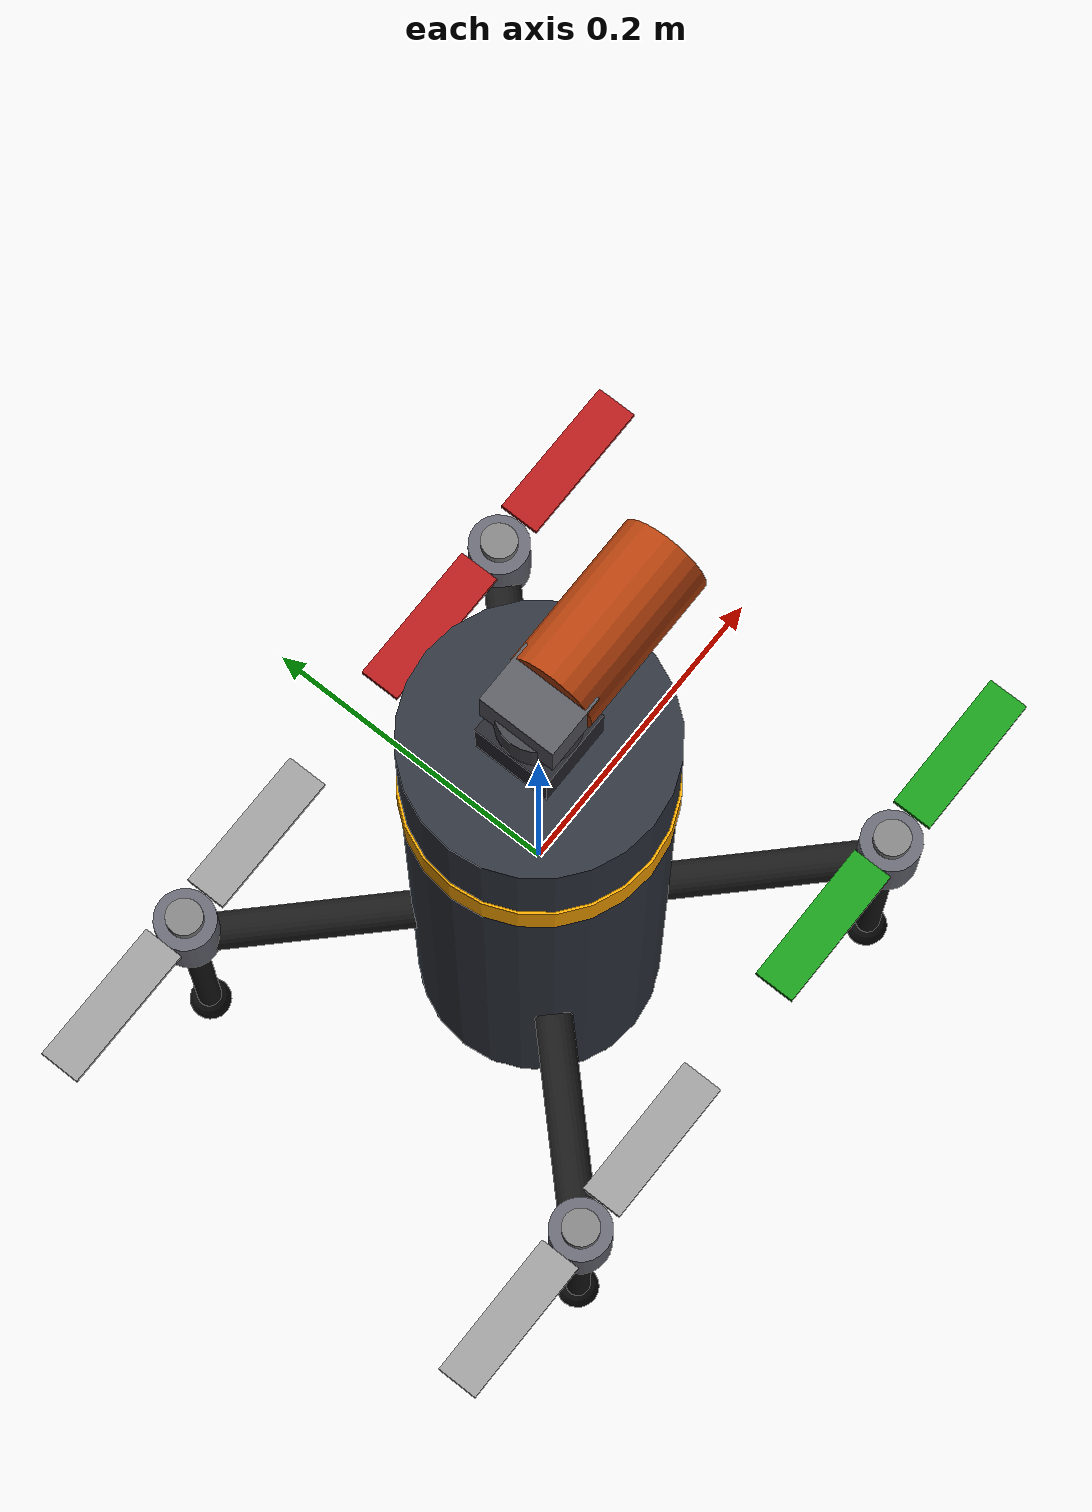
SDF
<?xml version="1.0" ?>
<sdf version="1.9">
  <model name="bullet_net_interceptor">

    <!-- =================================================================
         FUSELAGE + ARMS + LEGS  (single rigid body)
         ================================================================= -->
    <link name="base_link">
      <pose>0 0 0 0 0 0</pose>

      <inertial>
        <!-- 1.8 kg solid cylinder, r = 0.08, h = 0.50, centred on the origin.
             Ixx = Iyy = (1/12) m (3r^2 + h^2) = 0.040380
             Izz       = (1/2)  m r^2          = 0.005760           -->
        <mass>1.8</mass>
        <pose>0 0 0 0 0 0</pose>
        <inertia>
          <ixx>0.040380</ixx>
          <ixy>0</ixy>
          <ixz>0</ixz>
          <iyy>0.040380</iyy>
          <iyz>0</iyz>
          <izz>0.005760</izz>
        </inertia>
      </inertial>

      <!-- ========== fuselage ========== -->
      <collision name="fuselage_collision">
        <pose>0 0 0 0 0 0</pose>
        <geometry>
          <cylinder>
            <radius>0.08</radius>
            <length>0.50</length>
          </cylinder>
        </geometry>
        <surface>
          <friction>
            <ode>
              <mu>0.9</mu>
              <mu2>0.9</mu2>
            </ode>
          </friction>
          <contact>
            <ode>
              <kp>1e6</kp>
              <kd>100</kd>
              <max_vel>0.1</max_vel>
              <min_depth>0.001</min_depth>
            </ode>
          </contact>
        </surface>
      </collision>

      <visual name="fuselage_visual">
        <pose>0 0 0 0 0 0</pose>
        <geometry>
          <cylinder>
            <radius>0.08</radius>
            <length>0.50</length>
          </cylinder>
        </geometry>
        <material>
          <ambient>0.12 0.13 0.16 1</ambient>
          <diffuse>0.18 0.20 0.24 1</diffuse>
          <specular>0.55 0.55 0.60 1</specular>
        </material>
      </visual>

      <!-- ========== boat tail (rear taper) ========== -->
      <visual name="tail_cone_visual">
        <pose>0 0 -0.28 3.14159265 0 0</pose>
        <geometry>
          <cone>
            <radius>0.08</radius>
            <length>0.06</length>
          </cone>
        </geometry>
        <material>
          <ambient>0.10 0.10 0.12 1</ambient>
          <diffuse>0.15 0.15 0.18 1</diffuse>
        </material>
      </visual>

      <!-- ========== identification band ========== -->
      <visual name="band_visual">
        <pose>0 0 0.16 0 0 0</pose>
        <geometry>
          <cylinder>
            <radius>0.0815</radius>
            <length>0.03</length>
          </cylinder>
        </geometry>
        <material>
          <ambient>0.70 0.45 0.00 1</ambient>
          <diffuse>1.00 0.65 0.00 1</diffuse>
        </material>
      </visual>

      <!-- =========== ARM 0 : FRONT RIGHT (-45 deg) =========== -->
      <visual name="arm_0_visual">
        <pose>0.098995 -0.098995 -0.10 0 1.5707963 -0.7853982</pose>
        <geometry>
          <cylinder>
            <radius>0.012</radius>
            <length>0.16</length>
          </cylinder>
        </geometry>
        <material>
          <ambient>0.05 0.05 0.05 1</ambient>
          <diffuse>0.10 0.10 0.10 1</diffuse>
        </material>
      </visual>
      <collision name="arm_0_collision">
        <pose>0.098995 -0.098995 -0.10 0 1.5707963 -0.7853982</pose>
        <geometry>
          <cylinder>
            <radius>0.012</radius>
            <length>0.16</length>
          </cylinder>
        </geometry>
      </collision>
      <visual name="motor_pod_0_visual">
        <pose>0.155563 -0.155563 -0.085 0 0 0</pose>
        <geometry>
          <cylinder>
            <radius>0.020</radius>
            <length>0.045</length>
          </cylinder>
        </geometry>
        <material>
          <ambient>0.25 0.25 0.28 1</ambient>
          <diffuse>0.40 0.40 0.45 1</diffuse>
        </material>
      </visual>
      <visual name="leg_0_visual">
        <pose>0.155563 -0.155563 -0.19 0 0 0</pose>
        <geometry>
          <cylinder>
            <radius>0.008</radius>
            <length>0.18</length>
          </cylinder>
        </geometry>
        <material>
          <ambient>0.05 0.05 0.05 1</ambient>
          <diffuse>0.08 0.08 0.08 1</diffuse>
        </material>
      </visual>
      <collision name="foot_0_collision">
        <pose>0.155563 -0.155563 -0.28 0 0 0</pose>
        <geometry>
          <sphere>
            <radius>0.014</radius>
          </sphere>
        </geometry>
        <surface>
          <friction>
            <ode>
              <mu>1.2</mu>
              <mu2>1.2</mu2>
            </ode>
          </friction>
          <contact>
            <ode>
              <kp>1e6</kp>
              <kd>100</kd>
              <max_vel>0.1</max_vel>
              <min_depth>0.001</min_depth>
            </ode>
          </contact>
        </surface>
      </collision>
      <visual name="foot_0_visual">
        <pose>0.155563 -0.155563 -0.28 0 0 0</pose>
        <geometry>
          <sphere>
            <radius>0.014</radius>
          </sphere>
        </geometry>
        <material>
          <ambient>0.02 0.02 0.02 1</ambient>
          <diffuse>0.05 0.05 0.05 1</diffuse>
        </material>
      </visual>

      <!-- =========== ARM 1 : REAR LEFT (+135 deg) =========== -->
      <visual name="arm_1_visual">
        <pose>-0.098995 0.098995 -0.10 0 1.5707963 2.3561945</pose>
        <geometry>
          <cylinder>
            <radius>0.012</radius>
            <length>0.16</length>
          </cylinder>
        </geometry>
        <material>
          <ambient>0.05 0.05 0.05 1</ambient>
          <diffuse>0.10 0.10 0.10 1</diffuse>
        </material>
      </visual>
      <collision name="arm_1_collision">
        <pose>-0.098995 0.098995 -0.10 0 1.5707963 2.3561945</pose>
        <geometry>
          <cylinder>
            <radius>0.012</radius>
            <length>0.16</length>
          </cylinder>
        </geometry>
      </collision>
      <visual name="motor_pod_1_visual">
        <pose>-0.155563 0.155563 -0.085 0 0 0</pose>
        <geometry>
          <cylinder>
            <radius>0.020</radius>
            <length>0.045</length>
          </cylinder>
        </geometry>
        <material>
          <ambient>0.25 0.25 0.28 1</ambient>
          <diffuse>0.40 0.40 0.45 1</diffuse>
        </material>
      </visual>
      <visual name="leg_1_visual">
        <pose>-0.155563 0.155563 -0.19 0 0 0</pose>
        <geometry>
          <cylinder>
            <radius>0.008</radius>
            <length>0.18</length>
          </cylinder>
        </geometry>
        <material>
          <ambient>0.05 0.05 0.05 1</ambient>
          <diffuse>0.08 0.08 0.08 1</diffuse>
        </material>
      </visual>
      <collision name="foot_1_collision">
        <pose>-0.155563 0.155563 -0.28 0 0 0</pose>
        <geometry>
          <sphere>
            <radius>0.014</radius>
          </sphere>
        </geometry>
        <surface>
          <friction>
            <ode>
              <mu>1.2</mu>
              <mu2>1.2</mu2>
            </ode>
          </friction>
          <contact>
            <ode>
              <kp>1e6</kp>
              <kd>100</kd>
              <max_vel>0.1</max_vel>
              <min_depth>0.001</min_depth>
            </ode>
          </contact>
        </surface>
      </collision>
      <visual name="foot_1_visual">
        <pose>-0.155563 0.155563 -0.28 0 0 0</pose>
        <geometry>
          <sphere>
            <radius>0.014</radius>
          </sphere>
        </geometry>
        <material>
          <ambient>0.02 0.02 0.02 1</ambient>
          <diffuse>0.05 0.05 0.05 1</diffuse>
        </material>
      </visual>

      <!-- =========== ARM 2 : FRONT LEFT (+45 deg) =========== -->
      <visual name="arm_2_visual">
        <pose>0.098995 0.098995 -0.10 0 1.5707963 0.7853982</pose>
        <geometry>
          <cylinder>
            <radius>0.012</radius>
            <length>0.16</length>
          </cylinder>
        </geometry>
        <material>
          <ambient>0.05 0.05 0.05 1</ambient>
          <diffuse>0.10 0.10 0.10 1</diffuse>
        </material>
      </visual>
      <collision name="arm_2_collision">
        <pose>0.098995 0.098995 -0.10 0 1.5707963 0.7853982</pose>
        <geometry>
          <cylinder>
            <radius>0.012</radius>
            <length>0.16</length>
          </cylinder>
        </geometry>
      </collision>
      <visual name="motor_pod_2_visual">
        <pose>0.155563 0.155563 -0.085 0 0 0</pose>
        <geometry>
          <cylinder>
            <radius>0.020</radius>
            <length>0.045</length>
          </cylinder>
        </geometry>
        <material>
          <ambient>0.25 0.25 0.28 1</ambient>
          <diffuse>0.40 0.40 0.45 1</diffuse>
        </material>
      </visual>
      <visual name="leg_2_visual">
        <pose>0.155563 0.155563 -0.19 0 0 0</pose>
        <geometry>
          <cylinder>
            <radius>0.008</radius>
            <length>0.18</length>
          </cylinder>
        </geometry>
        <material>
          <ambient>0.05 0.05 0.05 1</ambient>
          <diffuse>0.08 0.08 0.08 1</diffuse>
        </material>
      </visual>
      <collision name="foot_2_collision">
        <pose>0.155563 0.155563 -0.28 0 0 0</pose>
        <geometry>
          <sphere>
            <radius>0.014</radius>
          </sphere>
        </geometry>
        <surface>
          <friction>
            <ode>
              <mu>1.2</mu>
              <mu2>1.2</mu2>
            </ode>
          </friction>
          <contact>
            <ode>
              <kp>1e6</kp>
              <kd>100</kd>
              <max_vel>0.1</max_vel>
              <min_depth>0.001</min_depth>
            </ode>
          </contact>
        </surface>
      </collision>
      <visual name="foot_2_visual">
        <pose>0.155563 0.155563 -0.28 0 0 0</pose>
        <geometry>
          <sphere>
            <radius>0.014</radius>
          </sphere>
        </geometry>
        <material>
          <ambient>0.02 0.02 0.02 1</ambient>
          <diffuse>0.05 0.05 0.05 1</diffuse>
        </material>
      </visual>

      <!-- =========== ARM 3 : REAR RIGHT (-135 deg) =========== -->
      <visual name="arm_3_visual">
        <pose>-0.098995 -0.098995 -0.10 0 1.5707963 -2.3561945</pose>
        <geometry>
          <cylinder>
            <radius>0.012</radius>
            <length>0.16</length>
          </cylinder>
        </geometry>
        <material>
          <ambient>0.05 0.05 0.05 1</ambient>
          <diffuse>0.10 0.10 0.10 1</diffuse>
        </material>
      </visual>
      <collision name="arm_3_collision">
        <pose>-0.098995 -0.098995 -0.10 0 1.5707963 -2.3561945</pose>
        <geometry>
          <cylinder>
            <radius>0.012</radius>
            <length>0.16</length>
          </cylinder>
        </geometry>
      </collision>
      <visual name="motor_pod_3_visual">
        <pose>-0.155563 -0.155563 -0.085 0 0 0</pose>
        <geometry>
          <cylinder>
            <radius>0.020</radius>
            <length>0.045</length>
          </cylinder>
        </geometry>
        <material>
          <ambient>0.25 0.25 0.28 1</ambient>
          <diffuse>0.40 0.40 0.45 1</diffuse>
        </material>
      </visual>
      <visual name="leg_3_visual">
        <pose>-0.155563 -0.155563 -0.19 0 0 0</pose>
        <geometry>
          <cylinder>
            <radius>0.008</radius>
            <length>0.18</length>
          </cylinder>
        </geometry>
        <material>
          <ambient>0.05 0.05 0.05 1</ambient>
          <diffuse>0.08 0.08 0.08 1</diffuse>
        </material>
      </visual>
      <collision name="foot_3_collision">
        <pose>-0.155563 -0.155563 -0.28 0 0 0</pose>
        <geometry>
          <sphere>
            <radius>0.014</radius>
          </sphere>
        </geometry>
        <surface>
          <friction>
            <ode>
              <mu>1.2</mu>
              <mu2>1.2</mu2>
            </ode>
          </friction>
          <contact>
            <ode>
              <kp>1e6</kp>
              <kd>100</kd>
              <max_vel>0.1</max_vel>
              <min_depth>0.001</min_depth>
            </ode>
          </contact>
        </surface>
      </collision>
      <visual name="foot_3_visual">
        <pose>-0.155563 -0.155563 -0.28 0 0 0</pose>
        <geometry>
          <sphere>
            <radius>0.014</radius>
          </sphere>
        </geometry>
        <material>
          <ambient>0.02 0.02 0.02 1</ambient>
          <diffuse>0.05 0.05 0.05 1</diffuse>
        </material>
      </visual>
    </link>

    <!-- =================================================================
         IMU
         ================================================================= -->
    <link name="imu_link">
      <pose>0 0 0 0 0 0</pose>
      <inertial>
        <mass>0.010</mass>
        <inertia>
          <ixx>1.0e-06</ixx>
          <ixy>0</ixy>
          <ixz>0</ixz>
          <iyy>1.0e-06</iyy>
          <iyz>0</iyz>
          <izz>1.0e-06</izz>
        </inertia>
      </inertial>

      <sensor name="imu_sensor" type="imu">
        <gz_frame_id>imu_link</gz_frame_id>
        <pose>0 0 0 3.14159265 0 0</pose>
        <always_on>1</always_on>
        <update_rate>1000</update_rate>
        <imu>
          <angular_velocity>
            <x>
              <noise type="gaussian">
                <mean>0</mean>
                <stddev>0.0003394</stddev>
                <bias_mean>0.0000075</bias_mean>
                <bias_stddev>0.0000008</bias_stddev>
              </noise>
            </x>
            <y>
              <noise type="gaussian">
                <mean>0</mean>
                <stddev>0.0003394</stddev>
                <bias_mean>0.0000075</bias_mean>
                <bias_stddev>0.0000008</bias_stddev>
              </noise>
            </y>
            <z>
              <noise type="gaussian">
                <mean>0</mean>
                <stddev>0.0003394</stddev>
                <bias_mean>0.0000075</bias_mean>
                <bias_stddev>0.0000008</bias_stddev>
              </noise>
            </z>
          </angular_velocity>
          <linear_acceleration>
            <x>
              <noise type="gaussian">
                <mean>0</mean>
                <stddev>0.004</stddev>
                <bias_mean>0.1</bias_mean>
                <bias_stddev>0.001</bias_stddev>
              </noise>
            </x>
            <y>
              <noise type="gaussian">
                <mean>0</mean>
                <stddev>0.004</stddev>
                <bias_mean>0.1</bias_mean>
                <bias_stddev>0.001</bias_stddev>
              </noise>
            </y>
            <z>
              <noise type="gaussian">
                <mean>0</mean>
                <stddev>0.004</stddev>
                <bias_mean>0.1</bias_mean>
                <bias_stddev>0.001</bias_stddev>
              </noise>
            </z>
          </linear_acceleration>
        </imu>
      </sensor>
    </link>

    <joint name="imu_joint" type="fixed">
      <parent>base_link</parent>
      <child>imu_link</child>
    </joint>

    <link name="camera_link">
      <pose>0.055 0 0.24 0 0.2617994 0</pose>
      <inertial>
        <mass>0.030</mass>
        <inertia>
          <ixx>1.0e-05</ixx>
          <ixy>0</ixy>
          <ixz>0</ixz>
          <iyy>1.0e-05</iyy>
          <iyz>0</iyz>
          <izz>1.0e-05</izz>
        </inertia>
      </inertial>

      <visual name="camera_housing_visual">
        <pose>0 0 0 0 1.5707963 0</pose>
        <geometry>
          <cylinder>
            <radius>0.018</radius>
            <length>0.045</length>
          </cylinder>
        </geometry>
        <material>
          <ambient>0.02 0.02 0.02 1</ambient>
          <diffuse>0.05 0.05 0.05 1</diffuse>
          <specular>0.2 0.2 0.2 1</specular>
        </material>
      </visual>
      <visual name="camera_lens_visual">
        <pose>0.024 0 0 0 1.5707963 0</pose>
        <geometry>
          <cylinder>
            <radius>0.013</radius>
            <length>0.006</length>
          </cylinder>
        </geometry>
        <material>
          <ambient>0.00 0.10 0.20 1</ambient>
          <diffuse>0.05 0.30 0.55 1</diffuse>
          <specular>0.9 0.9 0.9 1</specular>
        </material>
      </visual>

      <sensor name="target_lock_camera" type="camera">
        <pose>0 0 0 0 0 0</pose>
        <always_on>1</always_on>
        <update_rate>60</update_rate>
        <visualize>1</visualize>
        <topic>bullet_net_interceptor/nose_camera/image</topic>
        <camera name="nose_cam">
          <horizontal_fov>1.221730</horizontal_fov>
          <image>
            <width>1280</width>
            <height>720</height>
            <format>R8G8B8</format>
          </image>
          <clip>
            <near>0.05</near>
            <far>3000</far>
          </clip>
          <noise>
            <type>gaussian</type>
            <mean>0.0</mean>
            <stddev>0.005</stddev>
          </noise>
          <lens>
            <intrinsics>
              <fx>929.0</fx>
              <fy>929.0</fy>
              <cx>640.0</cx>
              <cy>360.0</cy>
              <s>0.0</s>
            </intrinsics>
          </lens>
          <optical_frame_id>camera_optical_frame</optical_frame_id>
        </camera>
      </sensor>
    </link>

    <joint name="camera_joint" type="fixed">
      <parent>base_link</parent>
      <child>camera_link</child>
    </joint>

    <link name="rotor_0">
      <pose>0.155563 -0.155563 -0.06 0 0 0</pose>
      <inertial>
        <mass>0.025</mass>
        <inertia>
          <ixx>6.0e-05</ixx>
          <ixy>0</ixy>
          <ixz>0</ixz>
          <iyy>6.0e-05</iyy>
          <iyz>0</iyz>
          <izz>1.2e-04</izz>
        </inertia>
      </inertial>
      <visual name="rotor_0_hub">
        <geometry>
          <cylinder>
            <radius>0.012</radius>
            <length>0.010</length>
          </cylinder>
        </geometry>
        <material>
          <ambient>0.30 0.30 0.30 1</ambient>
          <diffuse>0.50 0.50 0.50 1</diffuse>
        </material>
      </visual>
      <visual name="rotor_0_blade_1">
        <pose>0.070 0 0 0 0 0</pose>
        <geometry>
          <box>
            <size>0.10 0.028 0.004</size>
          </box>
        </geometry>
        <material>
          <ambient>0.05 0.30 0.05 1</ambient>
          <diffuse>0.10 0.60 0.10 1</diffuse>
        </material>
      </visual>
      <visual name="rotor_0_blade_2">
        <pose>-0.070 0 0 0 0 0</pose>
        <geometry>
          <box>
            <size>0.10 0.028 0.004</size>
          </box>
        </geometry>
        <material>
          <ambient>0.05 0.30 0.05 1</ambient>
          <diffuse>0.10 0.60 0.10 1</diffuse>
        </material>
      </visual>
      <collision name="rotor_0_collision">
        <geometry>
          <cylinder>
            <radius>0.120</radius>
            <length>0.005</length>
          </cylinder>
        </geometry>
        <surface>
          <contact>
            <ode/>
          </contact>
          <friction>
            <ode/>
          </friction>
        </surface>
      </collision>
    </link>

    <joint name="rotor_0_joint" type="revolute">
      <parent>base_link</parent>
      <child>rotor_0</child>
      <axis>
        <xyz>0 0 1</xyz>
        <limit>
          <lower>-1e16</lower>
          <upper>1e16</upper>
        </limit>
        <dynamics>
          <damping>0.004</damping>
        </dynamics>
      </axis>
    </joint>

    <link name="rotor_1">
      <pose>-0.155563 0.155563 -0.06 0 0 0</pose>
      <inertial>
        <mass>0.025</mass>
        <inertia>
          <ixx>6.0e-05</ixx>
          <ixy>0</ixy>
          <ixz>0</ixz>
          <iyy>6.0e-05</iyy>
          <iyz>0</iyz>
          <izz>1.2e-04</izz>
        </inertia>
      </inertial>
      <visual name="rotor_1_hub">
        <geometry>
          <cylinder>
            <radius>0.012</radius>
            <length>0.010</length>
          </cylinder>
        </geometry>
        <material>
          <ambient>0.30 0.30 0.30 1</ambient>
          <diffuse>0.50 0.50 0.50 1</diffuse>
        </material>
      </visual>
      <visual name="rotor_1_blade_1">
        <pose>0.070 0 0 0 0 0</pose>
        <geometry>
          <box>
            <size>0.10 0.028 0.004</size>
          </box>
        </geometry>
        <material>
          <ambient>0.30 0.30 0.30 1</ambient>
          <diffuse>0.60 0.60 0.60 1</diffuse>
        </material>
      </visual>
      <visual name="rotor_1_blade_2">
        <pose>-0.070 0 0 0 0 0</pose>
        <geometry>
          <box>
            <size>0.10 0.028 0.004</size>
          </box>
        </geometry>
        <material>
          <ambient>0.30 0.30 0.30 1</ambient>
          <diffuse>0.60 0.60 0.60 1</diffuse>
        </material>
      </visual>
      <collision name="rotor_1_collision">
        <geometry>
          <cylinder>
            <radius>0.120</radius>
            <length>0.005</length>
          </cylinder>
        </geometry>
        <surface>
          <contact>
            <ode/>
          </contact>
          <friction>
            <ode/>
          </friction>
        </surface>
      </collision>
    </link>

    <joint name="rotor_1_joint" type="revolute">
      <parent>base_link</parent>
      <child>rotor_1</child>
      <axis>
        <xyz>0 0 1</xyz>
        <limit>
          <lower>-1e16</lower>
          <upper>1e16</upper>
        </limit>
        <dynamics>
          <damping>0.004</damping>
        </dynamics>
      </axis>
    </joint>

    <link name="rotor_2">
      <pose>0.155563 0.155563 -0.06 0 0 0</pose>
      <inertial>
        <mass>0.025</mass>
        <inertia>
          <ixx>6.0e-05</ixx>
          <ixy>0</ixy>
          <ixz>0</ixz>
          <iyy>6.0e-05</iyy>
          <iyz>0</iyz>
          <izz>1.2e-04</izz>
        </inertia>
      </inertial>
      <visual name="rotor_2_hub">
        <geometry>
          <cylinder>
            <radius>0.012</radius>
            <length>0.010</length>
          </cylinder>
        </geometry>
        <material>
          <ambient>0.30 0.30 0.30 1</ambient>
          <diffuse>0.50 0.50 0.50 1</diffuse>
        </material>
      </visual>
      <visual name="rotor_2_blade_1">
        <pose>0.070 0 0 0 0 0</pose>
        <geometry>
          <box>
            <size>0.10 0.028 0.004</size>
          </box>
        </geometry>
        <material>
          <ambient>0.30 0.05 0.05 1</ambient>
          <diffuse>0.70 0.10 0.10 1</diffuse>
        </material>
      </visual>
      <visual name="rotor_2_blade_2">
        <pose>-0.070 0 0 0 0 0</pose>
        <geometry>
          <box>
            <size>0.10 0.028 0.004</size>
          </box>
        </geometry>
        <material>
          <ambient>0.30 0.05 0.05 1</ambient>
          <diffuse>0.70 0.10 0.10 1</diffuse>
        </material>
      </visual>
      <collision name="rotor_2_collision">
        <geometry>
          <cylinder>
            <radius>0.120</radius>
            <length>0.005</length>
          </cylinder>
        </geometry>
        <surface>
          <contact>
            <ode/>
          </contact>
          <friction>
            <ode/>
          </friction>
        </surface>
      </collision>
    </link>

    <joint name="rotor_2_joint" type="revolute">
      <parent>base_link</parent>
      <child>rotor_2</child>
      <axis>
        <xyz>0 0 1</xyz>
        <limit>
          <lower>-1e16</lower>
          <upper>1e16</upper>
        </limit>
        <dynamics>
          <damping>0.004</damping>
        </dynamics>
      </axis>
    </joint>

    <link name="rotor_3">
      <pose>-0.155563 -0.155563 -0.06 0 0 0</pose>
      <inertial>
        <mass>0.025</mass>
        <inertia>
          <ixx>6.0e-05</ixx>
          <ixy>0</ixy>
          <ixz>0</ixz>
          <iyy>6.0e-05</iyy>
          <iyz>0</iyz>
          <izz>1.2e-04</izz>
        </inertia>
      </inertial>
      <visual name="rotor_3_hub">
        <geometry>
          <cylinder>
            <radius>0.012</radius>
            <length>0.010</length>
          </cylinder>
        </geometry>
        <material>
          <ambient>0.30 0.30 0.30 1</ambient>
          <diffuse>0.50 0.50 0.50 1</diffuse>
        </material>
      </visual>
      <visual name="rotor_3_blade_1">
        <pose>0.070 0 0 0 0 0</pose>
        <geometry>
          <box>
            <size>0.10 0.028 0.004</size>
          </box>
        </geometry>
        <material>
          <ambient>0.30 0.30 0.30 1</ambient>
          <diffuse>0.60 0.60 0.60 1</diffuse>
        </material>
      </visual>
      <visual name="rotor_3_blade_2">
        <pose>-0.070 0 0 0 0 0</pose>
        <geometry>
          <box>
            <size>0.10 0.028 0.004</size>
          </box>
        </geometry>
        <material>
          <ambient>0.30 0.30 0.30 1</ambient>
          <diffuse>0.60 0.60 0.60 1</diffuse>
        </material>
      </visual>
      <collision name="rotor_3_collision">
        <geometry>
          <cylinder>
            <radius>0.120</radius>
            <length>0.005</length>
          </cylinder>
        </geometry>
        <surface>
          <contact>
            <ode/>
          </contact>
          <friction>
            <ode/>
          </friction>
        </surface>
      </collision>
    </link>

    <joint name="rotor_3_joint" type="revolute">
      <parent>base_link</parent>
      <child>rotor_3</child>
      <axis>
        <xyz>0 0 1</xyz>
        <limit>
          <lower>-1e16</lower>
          <upper>1e16</upper>
        </limit>
        <dynamics>
          <damping>0.004</damping>
        </dynamics>
      </axis>
    </joint>

    <!-- =================================================================
         PLUGINS
         ================================================================= -->

    <plugin filename="gz-sim-joint-state-publisher-system"
            name="gz::sim::systems::JointStatePublisher">
    </plugin>

    <!-- rotor_0 : CCW -->
    <plugin filename="gz-sim-lift-drag-system"
            name="gz::sim::systems::LiftDrag">
      <a0>0.20</a0>
      <alpha_stall>1.4</alpha_stall>
      <cla>4.2500</cla>
      <cda>0.10</cda>
      <cma>0.0</cma>
      <cla_stall>-0.025</cla_stall>
      <cda_stall>0.0</cda_stall>
      <cma_stall>0.0</cma_stall>
      <area>0.0025</area>
      <air_density>1.2041</air_density>
      <cp>0.084 0 0</cp>
      <forward>0 1 0</forward>
      <upward>0 0 1</upward>
      <link_name>rotor_0</link_name>
    </plugin>
    <plugin filename="gz-sim-lift-drag-system"
            name="gz::sim::systems::LiftDrag">
      <a0>0.20</a0>
      <alpha_stall>1.4</alpha_stall>
      <cla>4.2500</cla>
      <cda>0.10</cda>
      <cma>0.0</cma>
      <cla_stall>-0.025</cla_stall>
      <cda_stall>0.0</cda_stall>
      <cma_stall>0.0</cma_stall>
      <area>0.0025</area>
      <air_density>1.2041</air_density>
      <cp>-0.084 0 0</cp>
      <forward>0 -1 0</forward>
      <upward>0 0 1</upward>
      <link_name>rotor_0</link_name>
    </plugin>

    <!-- rotor_1 : CCW -->
    <plugin filename="gz-sim-lift-drag-system"
            name="gz::sim::systems::LiftDrag">
      <a0>0.20</a0>
      <alpha_stall>1.4</alpha_stall>
      <cla>4.2500</cla>
      <cda>0.10</cda>
      <cma>0.0</cma>
      <cla_stall>-0.025</cla_stall>
      <cda_stall>0.0</cda_stall>
      <cma_stall>0.0</cma_stall>
      <area>0.0025</area>
      <air_density>1.2041</air_density>
      <cp>0.084 0 0</cp>
      <forward>0 1 0</forward>
      <upward>0 0 1</upward>
      <link_name>rotor_1</link_name>
    </plugin>
    <plugin filename="gz-sim-lift-drag-system"
            name="gz::sim::systems::LiftDrag">
      <a0>0.20</a0>
      <alpha_stall>1.4</alpha_stall>
      <cla>4.2500</cla>
      <cda>0.10</cda>
      <cma>0.0</cma>
      <cla_stall>-0.025</cla_stall>
      <cda_stall>0.0</cda_stall>
      <cma_stall>0.0</cma_stall>
      <area>0.0025</area>
      <air_density>1.2041</air_density>
      <cp>-0.084 0 0</cp>
      <forward>0 -1 0</forward>
      <upward>0 0 1</upward>
      <link_name>rotor_1</link_name>
    </plugin>

    <!-- rotor_2 : CW (mirrored forward) -->
    <plugin filename="gz-sim-lift-drag-system"
            name="gz::sim::systems::LiftDrag">
      <a0>0.20</a0>
      <alpha_stall>1.4</alpha_stall>
      <cla>4.2500</cla>
      <cda>0.10</cda>
      <cma>0.0</cma>
      <cla_stall>-0.025</cla_stall>
      <cda_stall>0.0</cda_stall>
      <cma_stall>0.0</cma_stall>
      <area>0.0025</area>
      <air_density>1.2041</air_density>
      <cp>0.084 0 0</cp>
      <forward>0 -1 0</forward>
      <upward>0 0 1</upward>
      <link_name>rotor_2</link_name>
    </plugin>
    <plugin filename="gz-sim-lift-drag-system"
            name="gz::sim::systems::LiftDrag">
      <a0>0.20</a0>
      <alpha_stall>1.4</alpha_stall>
      <cla>4.2500</cla>
      <cda>0.10</cda>
      <cma>0.0</cma>
      <cla_stall>-0.025</cla_stall>
      <cda_stall>0.0</cda_stall>
      <cma_stall>0.0</cma_stall>
      <area>0.0025</area>
      <air_density>1.2041</air_density>
      <cp>-0.084 0 0</cp>
      <forward>0 1 0</forward>
      <upward>0 0 1</upward>
      <link_name>rotor_2</link_name>
    </plugin>

    <!-- rotor_3 : CW (mirrored forward) -->
    <plugin filename="gz-sim-lift-drag-system"
            name="gz::sim::systems::LiftDrag">
      <a0>0.20</a0>
      <alpha_stall>1.4</alpha_stall>
      <cla>4.2500</cla>
      <cda>0.10</cda>
      <cma>0.0</cma>
      <cla_stall>-0.025</cla_stall>
      <cda_stall>0.0</cda_stall>
      <cma_stall>0.0</cma_stall>
      <area>0.0025</area>
      <air_density>1.2041</air_density>
      <cp>0.084 0 0</cp>
      <forward>0 -1 0</forward>
      <upward>0 0 1</upward>
      <link_name>rotor_3</link_name>
    </plugin>
    <plugin filename="gz-sim-lift-drag-system"
            name="gz::sim::systems::LiftDrag">
      <a0>0.20</a0>
      <alpha_stall>1.4</alpha_stall>
      <cla>4.2500</cla>
      <cda>0.10</cda>
      <cma>0.0</cma>
      <cla_stall>-0.025</cla_stall>
      <cda_stall>0.0</cda_stall>
      <cma_stall>0.0</cma_stall>
      <area>0.0025</area>
      <air_density>1.2041</air_density>
      <cp>-0.084 0 0</cp>
      <forward>0 1 0</forward>
      <upward>0 0 1</upward>
      <link_name>rotor_3</link_name>
    </plugin>

    <!-- Required so the ArduPilot plugin can drive the rotor joints -->
    <plugin filename="gz-sim-apply-joint-force-system"
            name="gz::sim::systems::ApplyJointForce">
      <joint_name>rotor_0_joint</joint_name>
    </plugin>
    <plugin filename="gz-sim-apply-joint-force-system"
            name="gz::sim::systems::ApplyJointForce">
      <joint_name>rotor_1_joint</joint_name>
    </plugin>
    <plugin filename="gz-sim-apply-joint-force-system"
            name="gz::sim::systems::ApplyJointForce">
      <joint_name>rotor_2_joint</joint_name>
    </plugin>
    <plugin filename="gz-sim-apply-joint-force-system"
            name="gz::sim::systems::ApplyJointForce">
      <joint_name>rotor_3_joint</joint_name>
    </plugin>

    <plugin name="ArduPilotPlugin" filename="ArduPilotPlugin">
      <!-- Port settings -->
      <fdm_addr>127.0.0.1</fdm_addr>
      <fdm_port_in>9032</fdm_port_in>
      <fdm_port_out>9033</fdm_port_out>
      <connectionTimeoutMaxCount>5</connectionTimeoutMaxCount>
      <lock_step>1</lock_step>
      <no_time_sync>1</no_time_sync>
      <have_32_channels>0</have_32_channels>

      <!-- Frame conventions: Gazebo ENU/FLU -> ArduPilot NED/FRD -->
      <modelXYZToAirplaneXForwardZDown degrees="true">0 0 0 180 0 0</modelXYZToAirplaneXForwardZDown>
      <gazeboXYZToNED degrees="true">0 0 0 180 0 90</gazeboXYZToNED>

      <!-- Sensors -->
      <!-- Scoped name is resolved relative to this model entity, so the
           model name itself must NOT be repeated here. -->
      <imuName>imu_link::imu_sensor</imuName>

      <!-- Motor 1 : front right, CCW -->
      <control channel="0">
        <jointName>rotor_0_joint</jointName>
        <useForce>1</useForce>
        <multiplier>1550</multiplier>
        <offset>0</offset>
        <servo_min>1100</servo_min>
        <servo_max>1900</servo_max>
        <type>VELOCITY</type>
        <p_gain>0.20</p_gain>
        <i_gain>0</i_gain>
        <d_gain>0</d_gain>
        <i_max>0</i_max>
        <i_min>0</i_min>
        <cmd_max>6.0</cmd_max>
        <cmd_min>-6.0</cmd_min>
        <controlVelocitySlowdownSim>1</controlVelocitySlowdownSim>
      </control>

      <!-- Motor 2 : rear left, CCW -->
      <control channel="1">
        <jointName>rotor_1_joint</jointName>
        <useForce>1</useForce>
        <multiplier>1550</multiplier>
        <offset>0</offset>
        <servo_min>1100</servo_min>
        <servo_max>1900</servo_max>
        <type>VELOCITY</type>
        <p_gain>0.20</p_gain>
        <i_gain>0</i_gain>
        <d_gain>0</d_gain>
        <i_max>0</i_max>
        <i_min>0</i_min>
        <cmd_max>6.0</cmd_max>
        <cmd_min>-6.0</cmd_min>
        <controlVelocitySlowdownSim>1</controlVelocitySlowdownSim>
      </control>

      <!-- Motor 3 : front left, CW -->
      <control channel="2">
        <jointName>rotor_2_joint</jointName>
        <useForce>1</useForce>
        <multiplier>-1550</multiplier>
        <offset>0</offset>
        <servo_min>1100</servo_min>
        <servo_max>1900</servo_max>
        <type>VELOCITY</type>
        <p_gain>0.20</p_gain>
        <i_gain>0</i_gain>
        <d_gain>0</d_gain>
        <i_max>0</i_max>
        <i_min>0</i_min>
        <cmd_max>6.0</cmd_max>
        <cmd_min>-6.0</cmd_min>
        <controlVelocitySlowdownSim>1</controlVelocitySlowdownSim>
      </control>

      <!-- Motor 4 : rear right, CW -->
      <control channel="3">
        <jointName>rotor_3_joint</jointName>
        <useForce>1</useForce>
        <multiplier>-1550</multiplier>
        <offset>0</offset>
        <servo_min>1100</servo_min>
        <servo_max>1900</servo_max>
        <type>VELOCITY</type>
        <p_gain>0.20</p_gain>
        <i_gain>0</i_gain>
        <d_gain>0</d_gain>
        <i_max>0</i_max>
        <i_min>0</i_min>
        <cmd_max>6.0</cmd_max>
        <cmd_min>-6.0</cmd_min>
        <controlVelocitySlowdownSim>1</controlVelocitySlowdownSim>
      </control>
    </plugin>

    <!-- TARET + AG FIRLATICI                                             -->
    <!-- scripts/21_build_bullet_interceptor.py tarafindan eklendi         -->
    <!-- Govde DIKEY duruyor (+Z burun yonu) ama taret ILERI (+X) atiyor:  -->
    <!-- muzzle_link pitch=90 ile yatirilmis, kendi +Z'si govde +X'ine     -->
    <!-- bakar; launch_axis bu yuzden "0 0 1".                            -->

    <!-- Taret tabani: govdenin tepesine (burun konisinin yerine) sabit -->
    <link name="turret_base_link">
      <pose>0.0 0.0 0.265 0 0 0</pose>
      <inertial>
        <mass>0.10</mass>
        <inertia>
          <ixx>4e-5</ixx><ixy>0</ixy><ixz>0</ixz>
          <iyy>4e-5</iyy><iyz>0</iyz>
          <izz>4e-5</izz>
        </inertia>
      </inertial>
      <collision name="turret_base_collision">
        <geometry><box><size>0.05 0.05 0.03</size></box></geometry>
      </collision>
      <visual name="turret_base_visual">
        <geometry><box><size>0.05 0.05 0.03</size></box></geometry>
        <material>
          <ambient>0.15 0.15 0.18 1</ambient>
          <diffuse>0.15 0.15 0.18 1</diffuse>
        </material>
      </visual>
    </link>

    <joint name="turret_mount_joint" type="fixed">
      <parent>base_link</parent>
      <child>turret_base_link</child>
    </joint>

    <!-- 1. eksen: PAN (yaw, Z ekseni) -->
    <link name="turret_yaw_link">
      <pose>0.0 0.0 0.295 0 0 0</pose>
      <inertial>
        <mass>0.08</mass>
        <inertia>
          <ixx>3e-5</ixx><ixy>0</ixy><ixz>0</ixz>
          <iyy>3e-5</iyy><iyz>0</iyz>
          <izz>3e-5</izz>
        </inertia>
      </inertial>
      <collision name="turret_yaw_collision">
        <geometry><cylinder><radius>0.025</radius><length>0.025</length></cylinder></geometry>
      </collision>
      <visual name="turret_yaw_visual">
        <geometry><cylinder><radius>0.025</radius><length>0.025</length></cylinder></geometry>
        <material>
          <ambient>0.25 0.25 0.28 1</ambient>
          <diffuse>0.25 0.25 0.28 1</diffuse>
        </material>
      </visual>
    </link>

    <joint name="turret_yaw_joint" type="revolute">
      <parent>turret_base_link</parent>
      <child>turret_yaw_link</child>
      <axis>
        <xyz>0 0 1</xyz>
        <limit>
          <!-- +-100 derece: govde donmeden genis tarama (kaynak modelle ayni) -->
          <lower>-1.745</lower>
          <upper>1.745</upper>
          <effort>25.0</effort>
          <velocity>6.0</velocity>
        </limit>
        <dynamics><damping>0.02</damping></dynamics>
      </axis>
    </joint>

    <!-- 2. eksen: TILT (pitch, Y ekseni) -->
    <link name="turret_pitch_link">
      <pose>0.0 0.0 0.31 0 0 0</pose>
      <inertial>
        <mass>0.10</mass>
        <inertia>
          <ixx>4e-5</ixx><ixy>0</ixy><ixz>0</ixz>
          <iyy>6e-5</iyy><iyz>0</iyz>
          <izz>6e-5</izz>
        </inertia>
      </inertial>
      <collision name="turret_pitch_collision">
        <geometry><box><size>0.04 0.05 0.03</size></box></geometry>
      </collision>
      <visual name="turret_pitch_visual">
        <geometry><box><size>0.04 0.05 0.03</size></box></geometry>
        <material>
          <ambient>0.35 0.35 0.38 1</ambient>
          <diffuse>0.35 0.35 0.38 1</diffuse>
        </material>
      </visual>
    </link>

    <joint name="turret_pitch_joint" type="revolute">
      <parent>turret_yaw_link</parent>
      <child>turret_pitch_link</child>
      <axis>
        <xyz>0 1 0</xyz>
        <limit>
          <!-- -60 (yukari) .. +30 (asagi) derece; kaynak modelle ayni.
               SDF'te +pitch namluyu asagi indirir. -->
          <lower>-1.047</lower>
          <upper>0.524</upper>
          <effort>25.0</effort>
          <velocity>6.0</velocity>
        </limit>
        <dynamics><damping>0.02</damping></dynamics>
      </axis>
    </joint>

    <!-- Namlu: agin cikis noktasi. Ekseni +X (govde ileri yonu). -->
    <link name="muzzle_link">
      <pose degrees="true">0.06 0.0 0.31 0 90 0</pose>
      <inertial>
        <mass>0.07</mass>
        <inertia>
          <ixx>2e-5</ixx><ixy>0</ixy><ixz>0</ixz>
          <iyy>2e-5</iyy><iyz>0</iyz>
          <izz>1e-5</izz>
        </inertia>
      </inertial>
      <collision name="muzzle_collision">
        <geometry><cylinder><radius>0.028</radius><length>0.10</length></cylinder></geometry>
      </collision>
      <visual name="muzzle_visual">
        <geometry><cylinder><radius>0.028</radius><length>0.10</length></cylinder></geometry>
        <material>
          <ambient>0.7 0.25 0.05 1</ambient>
          <diffuse>0.7 0.25 0.05 1</diffuse>
        </material>
      </visual>
    </link>

    <joint name="muzzle_joint" type="fixed">
      <parent>turret_pitch_link</parent>
      <child>muzzle_link</child>
    </joint>

    <!-- ================ Taret kontrolu ================ -->
    <!-- Aci komutu: gz topic -t /model/bullet_net_interceptor/joint/turret_yaw_joint/0/cmd_pos
                       -m gz.msgs.Double -p 'data: 0.5'  -->
    <plugin filename="gz-sim-joint-position-controller-system"
      name="gz::sim::systems::JointPositionController">
      <joint_name>turret_yaw_joint</joint_name>
      <p_gain>8.0</p_gain>
      <i_gain>1.0</i_gain>
      <d_gain>0.4</d_gain>
      <i_max>2.0</i_max>
      <i_min>-2.0</i_min>
      <cmd_max>20.0</cmd_max>
      <cmd_min>-20.0</cmd_min>
    </plugin>

    <plugin filename="gz-sim-joint-position-controller-system"
      name="gz::sim::systems::JointPositionController">
      <joint_name>turret_pitch_joint</joint_name>
      <p_gain>30.0</p_gain>
      <i_gain>25.0</i_gain>
      <d_gain>1.5</d_gain>
      <i_max>15.0</i_max>
      <i_min>-15.0</i_min>
      <cmd_max>20.0</cmd_max>
      <cmd_min>-20.0</cmd_min>
    </plugin>

    <!-- ================ Ag tutucu / firlatici ================ -->
    <!--
      Ates:  gz topic -t /bullet_net_interceptor/net/fire -m gz.msgs.Double -p 'data: 20'
    -->
    <plugin filename="NetLauncherPlugin" name="avci::NetLauncherPlugin">
      <muzzle_link>muzzle_link</muzzle_link>
      <net_model>net_cone</net_model>
      <net_link>net_link</net_link>
      <fire_topic>/bullet_net_interceptor/net/fire</fire_topic>
      <muzzle_speed>20.0</muzzle_speed>
      <!-- muzzle_link pitch=90 ile duruyor; kendi +Z'si govde +X'ine bakar -->
      <launch_axis>0 0 1</launch_axis>
    </plugin>

  </model>
</sdf>
